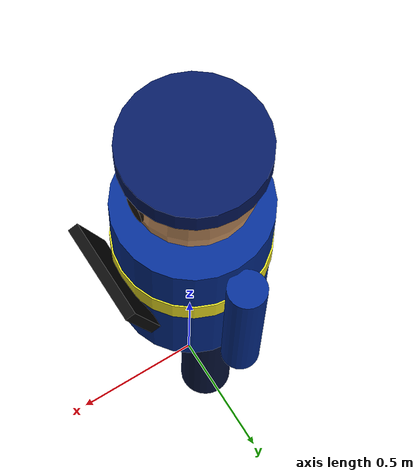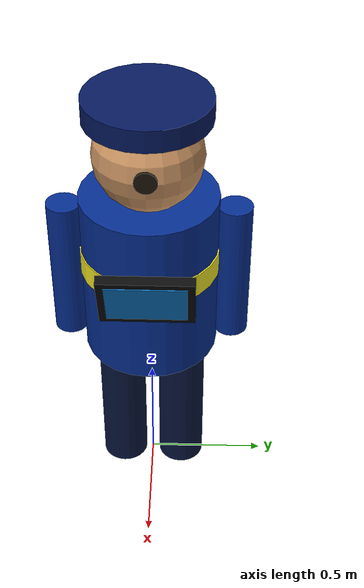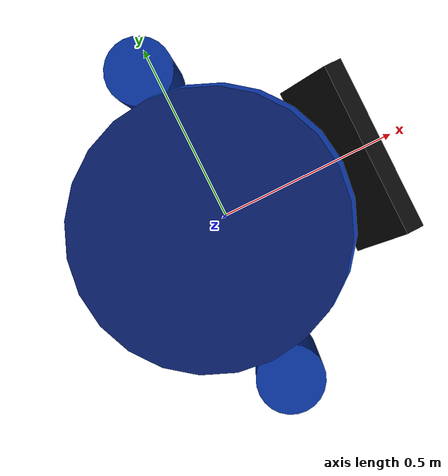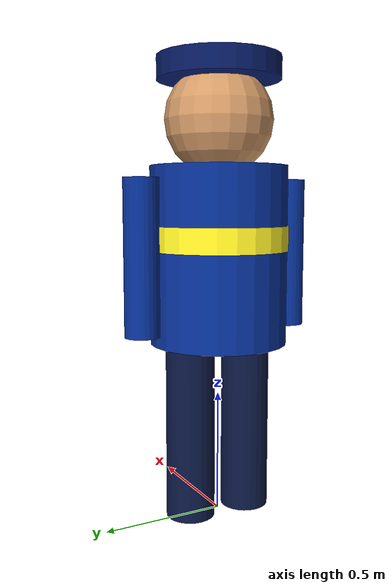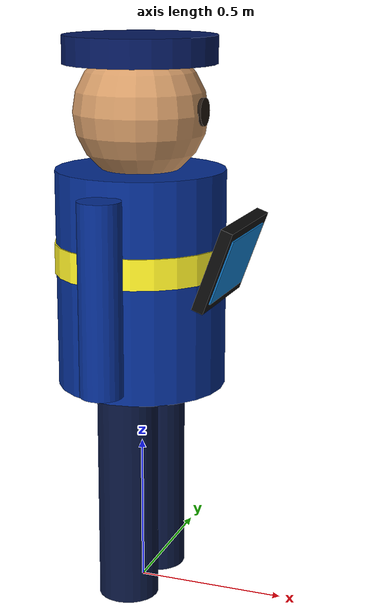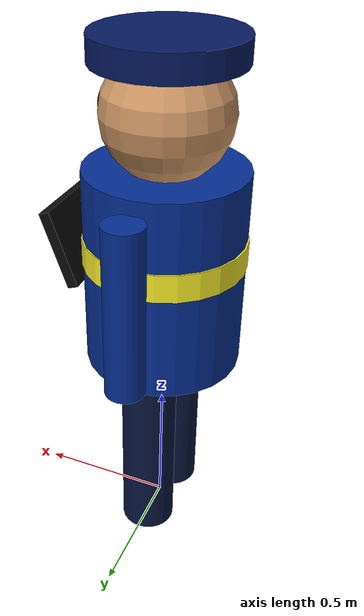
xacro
<?xml version="1.0"?>
<robot xmlns:xacro="http://www.ros.org/wiki/xacro" name="traffic_police">
  <xacro:include filename="$(find delivery_robot_description)/models/traffic_police/base.urdf.xacro"/>
  <xacro:include filename="$(find delivery_robot_description)/models/traffic_police/sensor/tablet.urdf.xacro"/>
  <xacro:include filename="$(find delivery_robot_description)/models/traffic_police/plugin/gz_static_plugin.xacro"/>

  <xacro:traffic_police_base/>
  <xacro:observation_tablet/>
  <xacro:traffic_police_gazebo/>
</robot>

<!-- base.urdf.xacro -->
<robot xmlns:xacro="http://www.ros.org/wiki/xacro">
  <xacro:macro name="traffic_police_base">
    <link name="police_base">
      <visual name="left_leg">
        <origin xyz="0 0.13 0.40" rpy="0 0 0"/>
        <geometry>
          <cylinder radius="0.10" length="0.80"/>
        </geometry>
        <material name="dark_blue">
          <color rgba="0.03 0.08 0.24 1"/>
        </material>
      </visual>

      <visual name="right_leg">
        <origin xyz="0 -0.13 0.40" rpy="0 0 0"/>
        <geometry>
          <cylinder radius="0.10" length="0.80"/>
        </geometry>
        <material name="dark_blue"/>
      </visual>

      <visual name="uniform">
        <origin xyz="0 0 1.08" rpy="0 0 0"/>
        <geometry>
          <cylinder radius="0.28" length="0.72"/>
        </geometry>
        <material name="police_blue">
          <color rgba="0.02 0.18 0.58 1"/>
        </material>
      </visual>

      <visual name="reflective_band">
        <origin xyz="0 0 1.15" rpy="0 0 0"/>
        <geometry>
          <cylinder radius="0.285" length="0.10"/>
        </geometry>
        <material name="reflective_yellow">
          <color rgba="1.00 0.95 0.15 1"/>
        </material>
      </visual>

      <visual name="left_arm">
        <origin xyz="0 0.34 1.08" rpy="0 0 0"/>
        <geometry>
          <cylinder radius="0.07" length="0.62"/>
        </geometry>
        <material name="police_blue"/>
      </visual>

      <visual name="right_arm">
        <origin xyz="0 -0.34 1.08" rpy="0 0 0"/>
        <geometry>
          <cylinder radius="0.07" length="0.62"/>
        </geometry>
        <material name="police_blue"/>
      </visual>

      <visual name="head">
        <origin xyz="0 0 1.62" rpy="0 0 0"/>
        <geometry>
          <sphere radius="0.22"/>
        </geometry>
        <material name="skin">
          <color rgba="0.82 0.60 0.40 1"/>
        </material>
      </visual>

      <visual name="face_direction">
        <origin xyz="0.205 0 1.63" rpy="0 1.570796 0"/>
        <geometry>
          <cylinder radius="0.045" length="0.03"/>
        </geometry>
        <material name="face_dark">
          <color rgba="0.12 0.08 0.05 1"/>
        </material>
      </visual>

      <visual name="cap">
        <origin xyz="0 0 1.82" rpy="0 0 0"/>
        <geometry>
          <cylinder radius="0.25" length="0.09"/>
        </geometry>
        <material name="cap_blue">
          <color rgba="0.02 0.10 0.38 1"/>
        </material>
      </visual>

      <collision>
        <origin xyz="0 0 0.90" rpy="0 0 0"/>
        <geometry>
          <cylinder radius="0.28" length="1.80"/>
        </geometry>
      </collision>

      <inertial>
        <origin xyz="0 0 0.90" rpy="0 0 0"/>
        <mass value="70.0"/>
        <inertia ixx="19.84" ixy="0" ixz="0"
                 iyy="19.84" iyz="0" izz="2.744"/>
      </inertial>
    </link>
  </xacro:macro>
</robot>

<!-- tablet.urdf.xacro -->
<robot xmlns:xacro="http://www.ros.org/wiki/xacro">
  <xacro:macro name="observation_tablet">
    <link name="observation_tablet_link">
      <visual name="tablet">
        <geometry>
          <box size="0.04 0.38 0.28"/>
        </geometry>
        <material name="tablet_black">
          <color rgba="0.04 0.04 0.04 1"/>
        </material>
      </visual>
      <visual name="screen">
        <origin xyz="0.022 0 0" rpy="0 0 0"/>
        <geometry>
          <box size="0.006 0.32 0.22"/>
        </geometry>
        <material name="screen_blue">
          <color rgba="0.05 0.45 0.75 1"/>
        </material>
      </visual>
      <collision>
        <geometry>
          <box size="0.04 0.38 0.28"/>
        </geometry>
      </collision>
      <inertial>
        <mass value="0.5"/>
        <inertia ixx="0.00908" ixy="0" ixz="0"
                 iyy="0.00333" iyz="0" izz="0.00608"/>
      </inertial>
    </link>

    <joint name="observation_tablet_joint" type="fixed">
      <parent link="police_base"/>
      <child link="observation_tablet_link"/>
      <origin xyz="0.31 0 1.16" rpy="0 0.35 0"/>
    </joint>
  </xacro:macro>
</robot>
